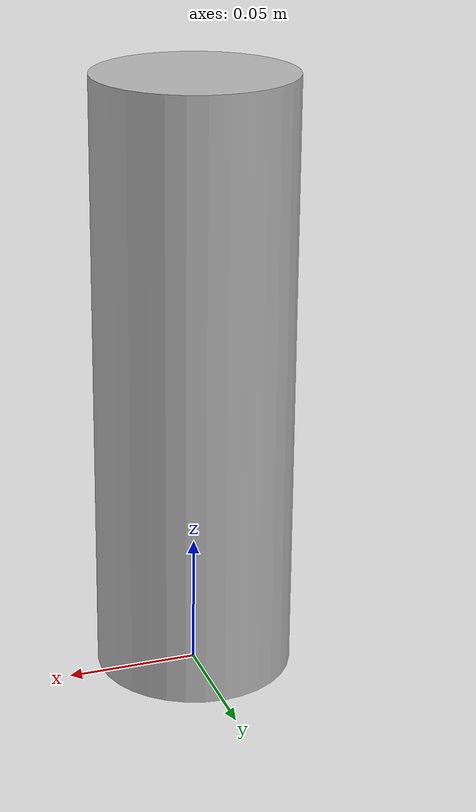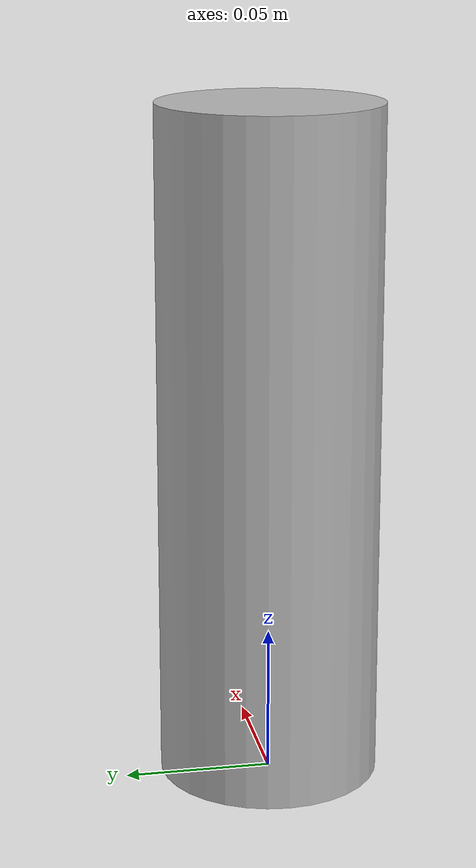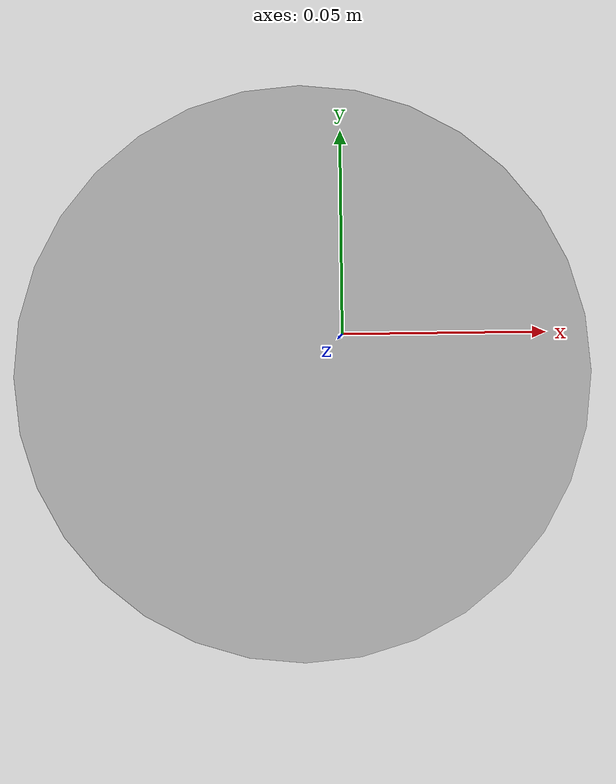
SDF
<?xml version="1.0" ?>
<sdf version="1.6">
<model name="clf_pringles">
  <link name="link">
    <pose>0 0 0.1165 0 0 0</pose>
    <inertial>
      <mass>0.200</mass>
      <inertia>
        <ixx>0.000984817</ixx>
        <ixy>0</ixy>
        <ixz>0</ixz>
        <iyy>0.000984817</iyy> <!-- same as ixx -->
        <iyz>0</iyz>
        <izz>0.00016</izz>
      </inertia>
    </inertial>
    <collision name="collision">
      <geometry>
        <cylinder>
          <radius>0.040</radius>
          <length>0.233</length>
        </cylinder>
      </geometry>
      <surface>
        <friction>
          <ode>
            <mu>1.0</mu>
            <mu2>1.0</mu2>
          </ode>
        </friction>
        <contact>
          <ode>
            <kp>10000000.0</kp>
            <kd>1.0</kd>
            <min_depth>0.001</min_depth>
            <max_vel>0.1</max_vel>
          </ode>
        </contact>
      </surface>
    </collision>
    <visual name="visual">
      <geometry>
        <mesh>
          <uri>model://clf_pringles/meshes/clf_pringles.dae</uri>
        </mesh>
      </geometry>
    </visual>
  </link>
</model>
</sdf>
